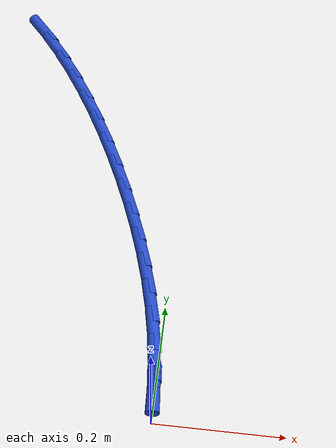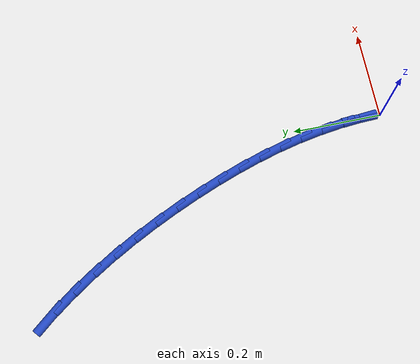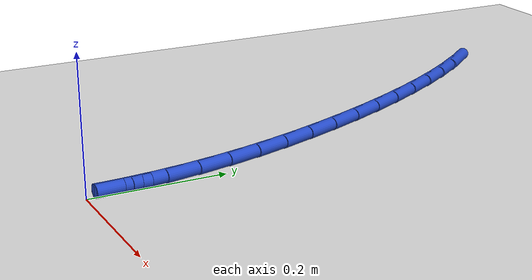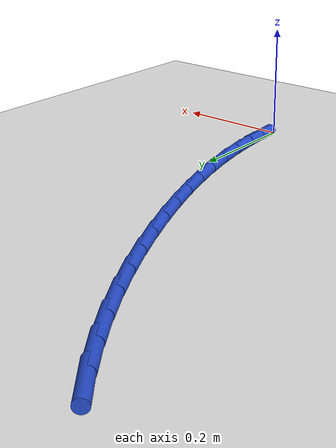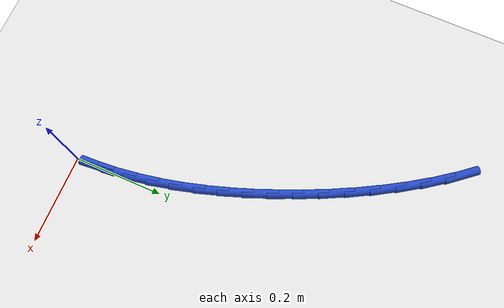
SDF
<sdf version="1.6">
 <world name="default">
  <model name="ground_plane">
   <static>1</static>
   <link name="link">
    <collision name="collision">
     <geometry><plane><normal>0 0 1</normal><size>100 100</size></plane></geometry>
     <surface><friction><ode><mu>100</mu><mu2>50</mu2></ode></friction></surface>
    </collision>
    <visual name="visual">
     <cast_shadows>0</cast_shadows>
     <geometry><plane><normal>0 0 1</normal><size>100 100</size></plane></geometry>
     <material>
      <script><uri>file://media/materials/scripts/gazebo.material</uri><name>Gazebo/WhiteGlow</name></script>
     </material>
    </visual>
   </link>
  </model>
  <model name="line">
   <link name="link_1">
    <pose>-0.0019871399659238563 0.05125121272329926 0.01 0 1.57 -1.4771043415872511</pose>
    <collision name="collision">
     <geometry><cylinder><radius>0.01</radius><length>0.08</length></cylinder></geometry>
    </collision>
    <visual name="visual">
     <material>
      <script><name>Gazebo/Blue</name><uri>file://media/materials/scripts/gazebo.material</uri></script>
     </material>
     <geometry><cylinder><radius>0.01</radius><length>0.08</length></cylinder></geometry>
    </visual>
   </link>
   <link name="link_2">
    <pose>-0.006762058978513102 0.10206600874207374 0.01 0 1.57 -1.424621499859907</pose>
    <collision name="collision">
     <geometry><cylinder><radius>0.01</radius><length>0.08</length></cylinder></geometry>
    </collision>
    <visual name="visual">
     <material>
      <script><name>Gazebo/Blue</name><uri>file://media/materials/scripts/gazebo.material</uri></script>
     </material>
     <geometry><cylinder><radius>0.01</radius><length>0.08</length></cylinder></geometry>
    </visual>
   </link>
   <link name="link_3">
    <pose>-0.014192375530316357 0.1525351611826902 0.01 0 1.57 -1.3751156182954565</pose>
    <collision name="collision">
     <geometry><cylinder><radius>0.01</radius><length>0.08</length></cylinder></geometry>
    </collision>
    <visual name="visual">
     <material>
      <script><name>Gazebo/Blue</name><uri>file://media/materials/scripts/gazebo.material</uri></script>
     </material>
     <geometry><cylinder><radius>0.01</radius><length>0.08</length></cylinder></geometry>
    </visual>
   </link>
   <link name="link_4">
    <pose>-0.02414570811388227 0.20274944317151525 0.01 0 1.57 -1.3289902384310273</pose>
    <collision name="collision">
     <geometry><cylinder><radius>0.01</radius><length>0.08</length></cylinder></geometry>
    </collision>
    <visual name="visual">
     <material>
      <script><name>Gazebo/Blue</name><uri>file://media/materials/scripts/gazebo.material</uri></script>
     </material>
     <geometry><cylinder><radius>0.01</radius><length>0.08</length></cylinder></geometry>
    </visual>
   </link>
   <link name="link_5">
    <pose>-0.03648967522175954 0.25279962783491566 0.01 0 1.57 -1.2865295445331488</pose>
    <collision name="collision">
     <geometry><cylinder><radius>0.01</radius><length>0.08</length></cylinder></geometry>
    </collision>
    <visual name="visual">
     <material>
      <script><name>Gazebo/Blue</name><uri>file://media/materials/scripts/gazebo.material</uri></script>
     </material>
     <geometry><cylinder><radius>0.01</radius><length>0.08</length></cylinder></geometry>
    </visual>
   </link>
   <link name="link_6">
    <pose>-0.05109189534649681 0.30277648829925824 0.01 0 1.57 -1.247906283066447</pose>
    <collision name="collision">
     <geometry><cylinder><radius>0.01</radius><length>0.08</length></cylinder></geometry>
    </collision>
    <visual name="visual">
     <material>
      <script><name>Gazebo/Blue</name><uri>file://media/materials/scripts/gazebo.material</uri></script>
     </material>
     <geometry><cylinder><radius>0.01</radius><length>0.08</length></cylinder></geometry>
    </visual>
   </link>
   <link name="link_7">
    <pose>-0.06781998698064275 0.35277079769090947 0.01 0 1.57 -1.2131962441955746</pose>
    <collision name="collision">
     <geometry><cylinder><radius>0.01</radius><length>0.08</length></cylinder></geometry>
    </collision>
    <visual name="visual">
     <material>
      <script><name>Gazebo/Blue</name><uri>file://media/materials/scripts/gazebo.material</uri></script>
     </material>
     <geometry><cylinder><radius>0.01</radius><length>0.08</length></cylinder></geometry>
    </visual>
   </link>
   <link name="link_8">
    <pose>-0.08654156861674608 0.4028733291362364 0.01 0 1.57 -1.1823477809454601</pose>
    <collision name="collision">
     <geometry><cylinder><radius>0.01</radius><length>0.08</length></cylinder></geometry>
    </collision>
    <visual name="visual">
     <material>
      <script><name>Gazebo/Blue</name><uri>file://media/materials/scripts/gazebo.material</uri></script>
     </material>
     <geometry><cylinder><radius>0.01</radius><length>0.08</length></cylinder></geometry>
    </visual>
   </link>
   <link name="link_9">
    <pose>-0.10712542488319872 0.4531707876500715 0.01 0 1.57 -1.1531765955939826</pose>
    <collision name="collision">
     <geometry><cylinder><radius>0.01</radius><length>0.08</length></cylinder></geometry>
    </collision>
    <visual name="visual">
     <material>
      <script><name>Gazebo/Blue</name><uri>file://media/materials/scripts/gazebo.material</uri></script>
     </material>
     <geometry><cylinder><radius>0.01</radius><length>0.08</length></cylinder></geometry>
    </visual>
   </link>
   <link name="link_10">
    <pose>-0.12949060444019084 0.50357453016181 0.01 0 1.57 -1.1225323568267886</pose>
    <collision name="collision">
     <geometry><cylinder><radius>0.01</radius><length>0.08</length></cylinder></geometry>
    </collision>
    <visual name="visual">
     <material>
      <script><name>Gazebo/Blue</name><uri>file://media/materials/scripts/gazebo.material</uri></script>
     </material>
     <geometry><cylinder><radius>0.01</radius><length>0.08</length></cylinder></geometry>
    </visual>
   </link>
   <link name="link_11">
    <pose>-0.1536244555201996 0.5537576478110093 0.01 0 1.57 -1.0898012316331644</pose>
    <collision name="collision">
     <geometry><cylinder><radius>0.01</radius><length>0.08</length></cylinder></geometry>
    </collision>
    <visual name="visual">
     <material>
      <script><name>Gazebo/Blue</name><uri>file://media/materials/scripts/gazebo.material</uri></script>
     </material>
     <geometry><cylinder><radius>0.01</radius><length>0.08</length></cylinder></geometry>
    </visual>
   </link>
   <link name="link_12">
    <pose>-0.17951920623906803 0.6033762080689149 0.01 0 1.57 -1.0545404654575479</pose>
    <collision name="collision">
     <geometry><cylinder><radius>0.01</radius><length>0.08</length></cylinder></geometry>
    </collision>
    <visual name="visual">
     <material>
      <script><name>Gazebo/Blue</name><uri>file://media/materials/scripts/gazebo.material</uri></script>
     </material>
     <geometry><cylinder><radius>0.01</radius><length>0.08</length></cylinder></geometry>
    </visual>
   </link>
   <link name="link_13">
    <pose>-0.207167084712639 0.6520862784067722 0.01 0 1.57 -1.016265073724541</pose>
    <collision name="collision">
     <geometry><cylinder><radius>0.01</radius><length>0.08</length></cylinder></geometry>
    </collision>
    <visual name="visual">
     <material>
      <script><name>Gazebo/Blue</name><uri>file://media/materials/scripts/gazebo.material</uri></script>
     </material>
     <geometry><cylinder><radius>0.01</radius><length>0.08</length></cylinder></geometry>
    </visual>
   </link>
   <link name="link_14">
    <pose>-0.23656031905675562 0.6995439262958266 0.01 0 1.57 -0.9744381176498755</pose>
    <collision name="collision">
     <geometry><cylinder><radius>0.01</radius><length>0.08</length></cylinder></geometry>
    </collision>
    <visual name="visual">
     <material>
      <script><name>Gazebo/Blue</name><uri>file://media/materials/scripts/gazebo.material</uri></script>
     </material>
     <geometry><cylinder><radius>0.01</radius><length>0.08</length></cylinder></geometry>
    </visual>
   </link>
   <link name="link_15">
    <pose>-0.2676911373872609 0.7454052192073238 0.01 0 1.57 -0.9284637713056544</pose>
    <collision name="collision">
     <geometry><cylinder><radius>0.01</radius><length>0.08</length></cylinder></geometry>
    </collision>
    <visual name="visual">
     <material>
      <script><name>Gazebo/Blue</name><uri>file://media/materials/scripts/gazebo.material</uri></script>
     </material>
     <geometry><cylinder><radius>0.01</radius><length>0.08</length></cylinder></geometry>
    </visual>
   </link>
   <link name="link_16">
    <pose>-0.30055176781999776 0.7893262246125089 0.01 0 1.57 -0.8776853203044113</pose>
    <collision name="collision">
     <geometry><cylinder><radius>0.01</radius><length>0.08</length></cylinder></geometry>
    </collision>
    <visual name="visual">
     <material>
      <script><name>Gazebo/Blue</name><uri>file://media/materials/scripts/gazebo.material</uri></script>
     </material>
     <geometry><cylinder><radius>0.01</radius><length>0.08</length></cylinder></geometry>
    </visual>
   </link>
   <link name="link_141">
    <pose>-0.00201647672118831 0.0511900330343185 0.01 0 1.57 -1.5314247037677635</pose>
    <collision name="collision">
     <geometry><cylinder><radius>0.01</radius><length>0.08</length></cylinder></geometry>
    </collision>
    <visual name="visual">
     <material>
      <script><name>Gazebo/Blue</name><uri>file://media/materials/scripts/gazebo.material</uri></script>
     </material>
     <geometry><cylinder><radius>0.01</radius><length>0.08</length></cylinder></geometry>
    </visual>
   </link>
  </model>
 </world>
</sdf>
